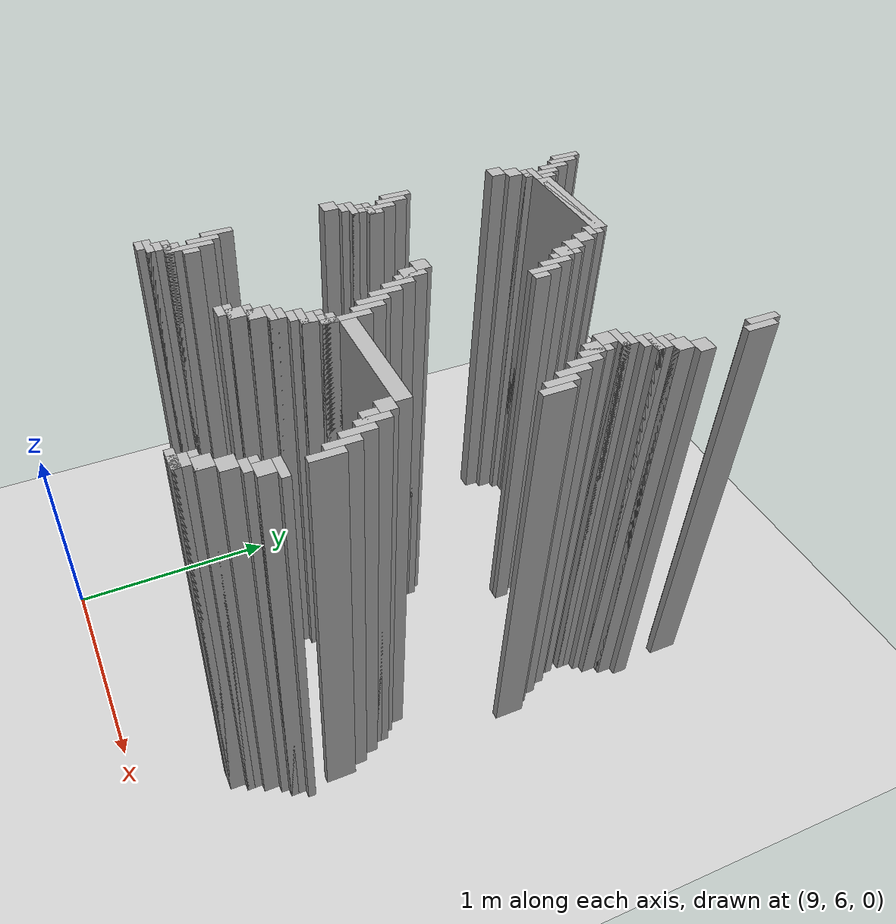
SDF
<sdf version="1.6">
 <world name="slam_world">
  <model name="ground_plane">
   <static>true</static>
   <link name="link">
    <collision name="collision">
     <geometry><plane><normal>0 0 1</normal><size>100 100</size></plane></geometry>
    </collision>
    <visual name="visual">
     <geometry><plane><normal>0 0 1</normal><size>100 100</size></plane></geometry>
     <material>
      <ambient>0.8 0.8 0.8 1</ambient>
      <diffuse>0.8 0.8 0.8 1</diffuse>
      <specular>0.8 0.8 0.8 1</specular>
     </material>
    </visual>
   </link>
  </model>
  <model name="wall_2930">
   <static>true</static>
   <pose>8.961716937354987 8.700696055684455 1.0 0 0 0</pose>
   <link name="link">
    <collision name="collision">
     <geometry><box><size>0.03480278422273782 0.13921113689095127 2.0</size></box></geometry>
    </collision>
    <visual name="visual">
     <geometry><box><size>0.03480278422273782 0.13921113689095127 2.0</size></box></geometry>
     <material><ambient>0.5 0.5 0.5 1</ambient><diffuse>0.7 0.7 0.7 1</diffuse></material>
    </visual>
   </link>
  </model>
  <model name="wall_2931">
   <static>true</static>
   <pose>10.423433874709977 8.700696055684455 1.0 0 0 0</pose>
   <link name="link">
    <collision name="collision">
     <geometry><box><size>0.03480278422273782 0.13921113689095127 2.0</size></box></geometry>
    </collision>
    <visual name="visual">
     <geometry><box><size>0.03480278422273782 0.13921113689095127 2.0</size></box></geometry>
     <material><ambient>0.5 0.5 0.5 1</ambient><diffuse>0.7 0.7 0.7 1</diffuse></material>
    </visual>
   </link>
  </model>
  <model name="wall_2945">
   <static>true</static>
   <pose>8.996519721577727 8.665893271461716 1.0 0 0 0</pose>
   <link name="link">
    <collision name="collision">
     <geometry><box><size>0.03480278422273782 0.13921113689095127 2.0</size></box></geometry>
    </collision>
    <visual name="visual">
     <geometry><box><size>0.03480278422273782 0.13921113689095127 2.0</size></box></geometry>
     <material><ambient>0.5 0.5 0.5 1</ambient><diffuse>0.7 0.7 0.7 1</diffuse></material>
    </visual>
   </link>
  </model>
  <model name="wall_2946">
   <static>true</static>
   <pose>10.458236658932714 8.665893271461716 1.0 0 0 0</pose>
   <link name="link">
    <collision name="collision">
     <geometry><box><size>0.03480278422273782 0.13921113689095127 2.0</size></box></geometry>
    </collision>
    <visual name="visual">
     <geometry><box><size>0.03480278422273782 0.13921113689095127 2.0</size></box></geometry>
     <material><ambient>0.5 0.5 0.5 1</ambient><diffuse>0.7 0.7 0.7 1</diffuse></material>
    </visual>
   </link>
  </model>
  <model name="wall_2970">
   <static>true</static>
   <pose>9.031322505800464 8.596287703016241 1.0 0 0 0</pose>
   <link name="link">
    <collision name="collision">
     <geometry><box><size>0.03480278422273782 0.13921113689095127 2.0</size></box></geometry>
    </collision>
    <visual name="visual">
     <geometry><box><size>0.03480278422273782 0.13921113689095127 2.0</size></box></geometry>
     <material><ambient>0.5 0.5 0.5 1</ambient><diffuse>0.7 0.7 0.7 1</diffuse></material>
    </visual>
   </link>
  </model>
  <model name="wall_2994">
   <static>true</static>
   <pose>9.066125290023201 8.509280742459396 1.0 0 0 0</pose>
   <link name="link">
    <collision name="collision">
     <geometry><box><size>0.03480278422273782 0.17401392111368907 2.0</size></box></geometry>
    </collision>
    <visual name="visual">
     <geometry><box><size>0.03480278422273782 0.17401392111368907 2.0</size></box></geometry>
     <material><ambient>0.5 0.5 0.5 1</ambient><diffuse>0.7 0.7 0.7 1</diffuse></material>
    </visual>
   </link>
  </model>
  <model name="wall_3009">
   <static>true</static>
   <pose>9.100928074245939 8.509280742459396 1.0 0 0 0</pose>
   <link name="link">
    <collision name="collision">
     <geometry><box><size>0.03480278422273782 0.10440835266821345 2.0</size></box></geometry>
    </collision>
    <visual name="visual">
     <geometry><box><size>0.03480278422273782 0.10440835266821345 2.0</size></box></geometry>
     <material><ambient>0.5 0.5 0.5 1</ambient><diffuse>0.7 0.7 0.7 1</diffuse></material>
    </visual>
   </link>
  </model>
  <model name="wall_3022">
   <static>true</static>
   <pose>9.361948955916473 8.491879350348027 1.0 0 0 0</pose>
   <link name="link">
    <collision name="collision">
     <geometry><box><size>0.4872389791183295 0.06960556844547564 2.0</size></box></geometry>
    </collision>
    <visual name="visual">
     <geometry><box><size>0.4872389791183295 0.06960556844547564 2.0</size></box></geometry>
     <material><ambient>0.5 0.5 0.5 1</ambient><diffuse>0.7 0.7 0.7 1</diffuse></material>
    </visual>
   </link>
  </model>
  <model name="wall_3035">
   <static>true</static>
   <pose>9.327146171693736 8.474477958236658 1.0 0 0 0</pose>
   <link name="link">
    <collision name="collision">
     <geometry><box><size>0.6264501160092807 0.03480278422273782 2.0</size></box></geometry>
    </collision>
    <visual name="visual">
     <geometry><box><size>0.6264501160092807 0.03480278422273782 2.0</size></box></geometry>
     <material><ambient>0.5 0.5 0.5 1</ambient><diffuse>0.7 0.7 0.7 1</diffuse></material>
    </visual>
   </link>
  </model>
  <model name="wall_3050">
   <static>true</static>
   <pose>9.048723897911833 8.43967517401392 1.0 0 0 0</pose>
   <link name="link">
    <collision name="collision">
     <geometry><box><size>0.06960556844547564 0.03480278422273782 2.0</size></box></geometry>
    </collision>
    <visual name="visual">
     <geometry><box><size>0.06960556844547564 0.03480278422273782 2.0</size></box></geometry>
     <material><ambient>0.5 0.5 0.5 1</ambient><diffuse>0.7 0.7 0.7 1</diffuse></material>
    </visual>
   </link>
  </model>
  <model name="wall_3051">
   <static>true</static>
   <pose>9.605568445475638 8.43967517401392 1.0 0 0 0</pose>
   <link name="link">
    <collision name="collision">
     <geometry><box><size>0.06960556844547564 0.03480278422273782 2.0</size></box></geometry>
    </collision>
    <visual name="visual">
     <geometry><box><size>0.06960556844547564 0.03480278422273782 2.0</size></box></geometry>
     <material><ambient>0.5 0.5 0.5 1</ambient><diffuse>0.7 0.7 0.7 1</diffuse></material>
    </visual>
   </link>
  </model>
  <model name="wall_3067">
   <static>true</static>
   <pose>9.013921113689095 8.387470997679815 1.0 0 0 0</pose>
   <link name="link">
    <collision name="collision">
     <geometry><box><size>0.06960556844547564 0.06960556844547564 2.0</size></box></geometry>
    </collision>
    <visual name="visual">
     <geometry><box><size>0.06960556844547564 0.06960556844547564 2.0</size></box></geometry>
     <material><ambient>0.5 0.5 0.5 1</ambient><diffuse>0.7 0.7 0.7 1</diffuse></material>
    </visual>
   </link>
  </model>
  <model name="wall_3068">
   <static>true</static>
   <pose>9.640371229698376 8.387470997679815 1.0 0 0 0</pose>
   <link name="link">
    <collision name="collision">
     <geometry><box><size>0.06960556844547564 0.06960556844547564 2.0</size></box></geometry>
    </collision>
    <visual name="visual">
     <geometry><box><size>0.06960556844547564 0.06960556844547564 2.0</size></box></geometry>
     <material><ambient>0.5 0.5 0.5 1</ambient><diffuse>0.7 0.7 0.7 1</diffuse></material>
    </visual>
   </link>
  </model>
  <model name="wall_3069">
   <static>true</static>
   <pose>10.475638051044083 8.387470997679815 1.0 0 0 0</pose>
   <link name="link">
    <collision name="collision">
     <geometry><box><size>0.06960556844547564 0.06960556844547564 2.0</size></box></geometry>
    </collision>
    <visual name="visual">
     <geometry><box><size>0.06960556844547564 0.06960556844547564 2.0</size></box></geometry>
     <material><ambient>0.5 0.5 0.5 1</ambient><diffuse>0.7 0.7 0.7 1</diffuse></material>
    </visual>
   </link>
  </model>
  <model name="wall_3084">
   <static>true</static>
   <pose>8.979118329466356 8.317865429234338 1.0 0 0 0</pose>
   <link name="link">
    <collision name="collision">
     <geometry><box><size>0.06960556844547564 0.06960556844547564 2.0</size></box></geometry>
    </collision>
    <visual name="visual">
     <geometry><box><size>0.06960556844547564 0.06960556844547564 2.0</size></box></geometry>
     <material><ambient>0.5 0.5 0.5 1</ambient><diffuse>0.7 0.7 0.7 1</diffuse></material>
    </visual>
   </link>
  </model>
  <model name="wall_3085">
   <static>true</static>
   <pose>9.675174013921113 8.317865429234338 1.0 0 0 0</pose>
   <link name="link">
    <collision name="collision">
     <geometry><box><size>0.06960556844547564 0.06960556844547564 2.0</size></box></geometry>
    </collision>
    <visual name="visual">
     <geometry><box><size>0.06960556844547564 0.06960556844547564 2.0</size></box></geometry>
     <material><ambient>0.5 0.5 0.5 1</ambient><diffuse>0.7 0.7 0.7 1</diffuse></material>
    </visual>
   </link>
  </model>
  <model name="wall_3086">
   <static>true</static>
   <pose>10.440835266821345 8.317865429234338 1.0 0 0 0</pose>
   <link name="link">
    <collision name="collision">
     <geometry><box><size>0.06960556844547564 0.06960556844547564 2.0</size></box></geometry>
    </collision>
    <visual name="visual">
     <geometry><box><size>0.06960556844547564 0.06960556844547564 2.0</size></box></geometry>
     <material><ambient>0.5 0.5 0.5 1</ambient><diffuse>0.7 0.7 0.7 1</diffuse></material>
    </visual>
   </link>
  </model>
  <model name="wall_3102">
   <static>true</static>
   <pose>9.72737819025522 8.248259860788863 1.0 0 0 0</pose>
   <link name="link">
    <collision name="collision">
     <geometry><box><size>0.03480278422273782 0.13921113689095127 2.0</size></box></geometry>
    </collision>
    <visual name="visual">
     <geometry><box><size>0.03480278422273782 0.13921113689095127 2.0</size></box></geometry>
     <material><ambient>0.5 0.5 0.5 1</ambient><diffuse>0.7 0.7 0.7 1</diffuse></material>
    </visual>
   </link>
  </model>
  <model name="wall_3103">
   <static>true</static>
   <pose>10.423433874709977 8.30046403712297 1.0 0 0 0</pose>
   <link name="link">
    <collision name="collision">
     <geometry><box><size>0.10440835266821345 0.03480278422273782 2.0</size></box></geometry>
    </collision>
    <visual name="visual">
     <geometry><box><size>0.10440835266821345 0.03480278422273782 2.0</size></box></geometry>
     <material><ambient>0.5 0.5 0.5 1</ambient><diffuse>0.7 0.7 0.7 1</diffuse></material>
    </visual>
   </link>
  </model>
  <model name="wall_3117">
   <static>true</static>
   <pose>9.70997679814385 8.248259860788863 1.0 0 0 0</pose>
   <link name="link">
    <collision name="collision">
     <geometry><box><size>0.06960556844547564 0.06960556844547564 2.0</size></box></geometry>
    </collision>
    <visual name="visual">
     <geometry><box><size>0.06960556844547564 0.06960556844547564 2.0</size></box></geometry>
     <material><ambient>0.5 0.5 0.5 1</ambient><diffuse>0.7 0.7 0.7 1</diffuse></material>
    </visual>
   </link>
  </model>
  <model name="wall_3118">
   <static>true</static>
   <pose>10.406032482598608 8.248259860788863 1.0 0 0 0</pose>
   <link name="link">
    <collision name="collision">
     <geometry><box><size>0.06960556844547564 0.06960556844547564 2.0</size></box></geometry>
    </collision>
    <visual name="visual">
     <geometry><box><size>0.06960556844547564 0.06960556844547564 2.0</size></box></geometry>
     <material><ambient>0.5 0.5 0.5 1</ambient><diffuse>0.7 0.7 0.7 1</diffuse></material>
    </visual>
   </link>
  </model>
  <model name="wall_3132">
   <static>true</static>
   <pose>9.762180974477959 8.178654292343387 1.0 0 0 0</pose>
   <link name="link">
    <collision name="collision">
     <geometry><box><size>0.03480278422273782 0.13921113689095127 2.0</size></box></geometry>
    </collision>
    <visual name="visual">
     <geometry><box><size>0.03480278422273782 0.13921113689095127 2.0</size></box></geometry>
     <material><ambient>0.5 0.5 0.5 1</ambient><diffuse>0.7 0.7 0.7 1</diffuse></material>
    </visual>
   </link>
  </model>
  <model name="wall_3133">
   <static>true</static>
   <pose>10.38863109048724 8.230858468677495 1.0 0 0 0</pose>
   <link name="link">
    <collision name="collision">
     <geometry><box><size>0.10440835266821345 0.03480278422273782 2.0</size></box></geometry>
    </collision>
    <visual name="visual">
     <geometry><box><size>0.10440835266821345 0.03480278422273782 2.0</size></box></geometry>
     <material><ambient>0.5 0.5 0.5 1</ambient><diffuse>0.7 0.7 0.7 1</diffuse></material>
    </visual>
   </link>
  </model>
  <model name="wall_3145">
   <static>true</static>
   <pose>10.37122969837587 8.196055684454755 1.0 0 0 0</pose>
   <link name="link">
    <collision name="collision">
     <geometry><box><size>0.06960556844547564 0.03480278422273782 2.0</size></box></geometry>
    </collision>
    <visual name="visual">
     <geometry><box><size>0.06960556844547564 0.03480278422273782 2.0</size></box></geometry>
     <material><ambient>0.5 0.5 0.5 1</ambient><diffuse>0.7 0.7 0.7 1</diffuse></material>
    </visual>
   </link>
  </model>
  <model name="wall_3158">
   <static>true</static>
   <pose>9.796983758700696 8.109048723897912 1.0 0 0 0</pose>
   <link name="link">
    <collision name="collision">
     <geometry><box><size>0.03480278422273782 0.13921113689095127 2.0</size></box></geometry>
    </collision>
    <visual name="visual">
     <geometry><box><size>0.03480278422273782 0.13921113689095127 2.0</size></box></geometry>
     <material><ambient>0.5 0.5 0.5 1</ambient><diffuse>0.7 0.7 0.7 1</diffuse></material>
    </visual>
   </link>
  </model>
  <model name="wall_3159">
   <static>true</static>
   <pose>10.336426914153131 8.14385150812065 1.0 0 0 0</pose>
   <link name="link">
    <collision name="collision">
     <geometry><box><size>0.06960556844547564 0.06960556844547564 2.0</size></box></geometry>
    </collision>
    <visual name="visual">
     <geometry><box><size>0.06960556844547564 0.06960556844547564 2.0</size></box></geometry>
     <material><ambient>0.5 0.5 0.5 1</ambient><diffuse>0.7 0.7 0.7 1</diffuse></material>
    </visual>
   </link>
  </model>
  <model name="wall_3172">
   <static>true</static>
   <pose>10.319025522041763 8.12645011600928 1.0 0 0 0</pose>
   <link name="link">
    <collision name="collision">
     <geometry><box><size>0.10440835266821345 0.03480278422273782 2.0</size></box></geometry>
    </collision>
    <visual name="visual">
     <geometry><box><size>0.10440835266821345 0.03480278422273782 2.0</size></box></geometry>
     <material><ambient>0.5 0.5 0.5 1</ambient><diffuse>0.7 0.7 0.7 1</diffuse></material>
    </visual>
   </link>
  </model>
  <model name="wall_3186">
   <static>true</static>
   <pose>9.831786542923433 8.074245939675174 1.0 0 0 0</pose>
   <link name="link">
    <collision name="collision">
     <geometry><box><size>0.03480278422273782 0.06960556844547564 2.0</size></box></geometry>
    </collision>
    <visual name="visual">
     <geometry><box><size>0.03480278422273782 0.06960556844547564 2.0</size></box></geometry>
     <material><ambient>0.5 0.5 0.5 1</ambient><diffuse>0.7 0.7 0.7 1</diffuse></material>
    </visual>
   </link>
  </model>
  <model name="wall_3187">
   <static>true</static>
   <pose>10.301624129930394 8.074245939675174 1.0 0 0 0</pose>
   <link name="link">
    <collision name="collision">
     <geometry><box><size>0.06960556844547564 0.06960556844547564 2.0</size></box></geometry>
    </collision>
    <visual name="visual">
     <geometry><box><size>0.06960556844547564 0.06960556844547564 2.0</size></box></geometry>
     <material><ambient>0.5 0.5 0.5 1</ambient><diffuse>0.7 0.7 0.7 1</diffuse></material>
    </visual>
   </link>
  </model>
  <model name="wall_3200">
   <static>true</static>
   <pose>10.3538283062645 8.004640371229698 1.0 0 0 0</pose>
   <link name="link">
    <collision name="collision">
     <geometry><box><size>0.03480278422273782 0.13921113689095127 2.0</size></box></geometry>
    </collision>
    <visual name="visual">
     <geometry><box><size>0.03480278422273782 0.13921113689095127 2.0</size></box></geometry>
     <material><ambient>0.5 0.5 0.5 1</ambient><diffuse>0.7 0.7 0.7 1</diffuse></material>
    </visual>
   </link>
  </model>
  <model name="wall_3213">
   <static>true</static>
   <pose>10.336426914153131 8.004640371229698 1.0 0 0 0</pose>
   <link name="link">
    <collision name="collision">
     <geometry><box><size>0.06960556844547564 0.06960556844547564 2.0</size></box></geometry>
    </collision>
    <visual name="visual">
     <geometry><box><size>0.06960556844547564 0.06960556844547564 2.0</size></box></geometry>
     <material><ambient>0.5 0.5 0.5 1</ambient><diffuse>0.7 0.7 0.7 1</diffuse></material>
    </visual>
   </link>
  </model>
  <model name="wall_3226">
   <static>true</static>
   <pose>10.38863109048724 7.935034802784222 1.0 0 0 0</pose>
   <link name="link">
    <collision name="collision">
     <geometry><box><size>0.03480278422273782 0.13921113689095127 2.0</size></box></geometry>
    </collision>
    <visual name="visual">
     <geometry><box><size>0.03480278422273782 0.13921113689095127 2.0</size></box></geometry>
     <material><ambient>0.5 0.5 0.5 1</ambient><diffuse>0.7 0.7 0.7 1</diffuse></material>
    </visual>
   </link>
  </model>
  <model name="wall_3244">
   <static>true</static>
   <pose>10.423433874709977 7.865429234338746 1.0 0 0 0</pose>
   <link name="link">
    <collision name="collision">
     <geometry><box><size>0.03480278422273782 0.13921113689095127 2.0</size></box></geometry>
    </collision>
    <visual name="visual">
     <geometry><box><size>0.03480278422273782 0.13921113689095127 2.0</size></box></geometry>
     <material><ambient>0.5 0.5 0.5 1</ambient><diffuse>0.7 0.7 0.7 1</diffuse></material>
    </visual>
   </link>
  </model>
  <model name="wall_3256">
   <static>true</static>
   <pose>8.996519721577727 7.795823665893272 1.0 0 0 0</pose>
   <link name="link">
    <collision name="collision">
     <geometry><box><size>0.03480278422273782 0.13921113689095127 2.0</size></box></geometry>
    </collision>
    <visual name="visual">
     <geometry><box><size>0.03480278422273782 0.13921113689095127 2.0</size></box></geometry>
     <material><ambient>0.5 0.5 0.5 1</ambient><diffuse>0.7 0.7 0.7 1</diffuse></material>
    </visual>
   </link>
  </model>
  <model name="wall_3257">
   <static>true</static>
   <pose>10.458236658932714 7.795823665893272 1.0 0 0 0</pose>
   <link name="link">
    <collision name="collision">
     <geometry><box><size>0.03480278422273782 0.13921113689095127 2.0</size></box></geometry>
    </collision>
    <visual name="visual">
     <geometry><box><size>0.03480278422273782 0.13921113689095127 2.0</size></box></geometry>
     <material><ambient>0.5 0.5 0.5 1</ambient><diffuse>0.7 0.7 0.7 1</diffuse></material>
    </visual>
   </link>
  </model>
  <model name="wall_3269">
   <static>true</static>
   <pose>9.031322505800464 7.761020881670533 1.0 0 0 0</pose>
   <link name="link">
    <collision name="collision">
     <geometry><box><size>0.03480278422273782 0.13921113689095127 2.0</size></box></geometry>
    </collision>
    <visual name="visual">
     <geometry><box><size>0.03480278422273782 0.13921113689095127 2.0</size></box></geometry>
     <material><ambient>0.5 0.5 0.5 1</ambient><diffuse>0.7 0.7 0.7 1</diffuse></material>
    </visual>
   </link>
  </model>
  <model name="wall_3270">
   <static>true</static>
   <pose>10.493039443155451 7.761020881670533 1.0 0 0 0</pose>
   <link name="link">
    <collision name="collision">
     <geometry><box><size>0.03480278422273782 0.13921113689095127 2.0</size></box></geometry>
    </collision>
    <visual name="visual">
     <geometry><box><size>0.03480278422273782 0.13921113689095127 2.0</size></box></geometry>
     <material><ambient>0.5 0.5 0.5 1</ambient><diffuse>0.7 0.7 0.7 1</diffuse></material>
    </visual>
   </link>
  </model>
  <model name="wall_3287">
   <static>true</static>
   <pose>9.066125290023201 7.65661252900232 1.0 0 0 0</pose>
   <link name="link">
    <collision name="collision">
     <geometry><box><size>0.03480278422273782 0.2088167053364269 2.0</size></box></geometry>
    </collision>
    <visual name="visual">
     <geometry><box><size>0.03480278422273782 0.2088167053364269 2.0</size></box></geometry>
     <material><ambient>0.5 0.5 0.5 1</ambient><diffuse>0.7 0.7 0.7 1</diffuse></material>
    </visual>
   </link>
  </model>
  <model name="wall_3305">
   <static>true</static>
   <pose>9.100928074245939 7.65661252900232 1.0 0 0 0</pose>
   <link name="link">
    <collision name="collision">
     <geometry><box><size>0.03480278422273782 0.06960556844547564 2.0</size></box></geometry>
    </collision>
    <visual name="visual">
     <geometry><box><size>0.03480278422273782 0.06960556844547564 2.0</size></box></geometry>
     <material><ambient>0.5 0.5 0.5 1</ambient><diffuse>0.7 0.7 0.7 1</diffuse></material>
    </visual>
   </link>
  </model>
  <model name="wall_3306">
   <static>true</static>
   <pose>9.5707656612529 7.65661252900232 1.0 0 0 0</pose>
   <link name="link">
    <collision name="collision">
     <geometry><box><size>0.06960556844547564 0.06960556844547564 2.0</size></box></geometry>
    </collision>
    <visual name="visual">
     <geometry><box><size>0.06960556844547564 0.06960556844547564 2.0</size></box></geometry>
     <material><ambient>0.5 0.5 0.5 1</ambient><diffuse>0.7 0.7 0.7 1</diffuse></material>
    </visual>
   </link>
  </model>
  <model name="wall_3318">
   <static>true</static>
   <pose>9.066125290023201 7.6392111368909505 1.0 0 0 0</pose>
   <link name="link">
    <collision name="collision">
     <geometry><box><size>0.10440835266821345 0.03480278422273782 2.0</size></box></geometry>
    </collision>
    <visual name="visual">
     <geometry><box><size>0.10440835266821345 0.03480278422273782 2.0</size></box></geometry>
     <material><ambient>0.5 0.5 0.5 1</ambient><diffuse>0.7 0.7 0.7 1</diffuse></material>
    </visual>
   </link>
  </model>
  <model name="wall_3319">
   <static>true</static>
   <pose>9.622969837587007 7.587006960556844 1.0 0 0 0</pose>
   <link name="link">
    <collision name="collision">
     <geometry><box><size>0.03480278422273782 0.13921113689095127 2.0</size></box></geometry>
    </collision>
    <visual name="visual">
     <geometry><box><size>0.03480278422273782 0.13921113689095127 2.0</size></box></geometry>
     <material><ambient>0.5 0.5 0.5 1</ambient><diffuse>0.7 0.7 0.7 1</diffuse></material>
    </visual>
   </link>
  </model>
  <model name="wall_3333">
   <static>true</static>
   <pose>9.048723897911833 7.587006960556844 1.0 0 0 0</pose>
   <link name="link">
    <collision name="collision">
     <geometry><box><size>0.06960556844547564 0.06960556844547564 2.0</size></box></geometry>
    </collision>
    <visual name="visual">
     <geometry><box><size>0.06960556844547564 0.06960556844547564 2.0</size></box></geometry>
     <material><ambient>0.5 0.5 0.5 1</ambient><diffuse>0.7 0.7 0.7 1</diffuse></material>
    </visual>
   </link>
  </model>
  <model name="wall_3334">
   <static>true</static>
   <pose>9.605568445475638 7.587006960556844 1.0 0 0 0</pose>
   <link name="link">
    <collision name="collision">
     <geometry><box><size>0.06960556844547564 0.06960556844547564 2.0</size></box></geometry>
    </collision>
    <visual name="visual">
     <geometry><box><size>0.06960556844547564 0.06960556844547564 2.0</size></box></geometry>
     <material><ambient>0.5 0.5 0.5 1</ambient><diffuse>0.7 0.7 0.7 1</diffuse></material>
    </visual>
   </link>
  </model>
  <model name="wall_3348">
   <static>true</static>
   <pose>9.031322505800464 7.569605568445476 1.0 0 0 0</pose>
   <link name="link">
    <collision name="collision">
     <geometry><box><size>0.10440835266821345 0.03480278422273782 2.0</size></box></geometry>
    </collision>
    <visual name="visual">
     <geometry><box><size>0.10440835266821345 0.03480278422273782 2.0</size></box></geometry>
     <material><ambient>0.5 0.5 0.5 1</ambient><diffuse>0.7 0.7 0.7 1</diffuse></material>
    </visual>
   </link>
  </model>
  <model name="wall_3349">
   <static>true</static>
   <pose>9.657772621809745 7.517401392111369 1.0 0 0 0</pose>
   <link name="link">
    <collision name="collision">
     <geometry><box><size>0.03480278422273782 0.13921113689095127 2.0</size></box></geometry>
    </collision>
    <visual name="visual">
     <geometry><box><size>0.03480278422273782 0.13921113689095127 2.0</size></box></geometry>
     <material><ambient>0.5 0.5 0.5 1</ambient><diffuse>0.7 0.7 0.7 1</diffuse></material>
    </visual>
   </link>
  </model>
  <model name="wall_3361">
   <static>true</static>
   <pose>9.013921113689095 7.534802784222737 1.0 0 0 0</pose>
   <link name="link">
    <collision name="collision">
     <geometry><box><size>0.06960556844547564 0.03480278422273782 2.0</size></box></geometry>
    </collision>
    <visual name="visual">
     <geometry><box><size>0.06960556844547564 0.03480278422273782 2.0</size></box></geometry>
     <material><ambient>0.5 0.5 0.5 1</ambient><diffuse>0.7 0.7 0.7 1</diffuse></material>
    </visual>
   </link>
  </model>
  <model name="wall_3373">
   <static>true</static>
   <pose>8.979118329466356 7.48259860788863 1.0 0 0 0</pose>
   <link name="link">
    <collision name="collision">
     <geometry><box><size>0.06960556844547564 0.06960556844547564 2.0</size></box></geometry>
    </collision>
    <visual name="visual">
     <geometry><box><size>0.06960556844547564 0.06960556844547564 2.0</size></box></geometry>
     <material><ambient>0.5 0.5 0.5 1</ambient><diffuse>0.7 0.7 0.7 1</diffuse></material>
    </visual>
   </link>
  </model>
  <model name="wall_3374">
   <static>true</static>
   <pose>9.692575406032482 7.447795823665893 1.0 0 0 0</pose>
   <link name="link">
    <collision name="collision">
     <geometry><box><size>0.03480278422273782 0.13921113689095127 2.0</size></box></geometry>
    </collision>
    <visual name="visual">
     <geometry><box><size>0.03480278422273782 0.13921113689095127 2.0</size></box></geometry>
     <material><ambient>0.5 0.5 0.5 1</ambient><diffuse>0.7 0.7 0.7 1</diffuse></material>
    </visual>
   </link>
  </model>
  <model name="wall_3389">
   <static>true</static>
   <pose>9.72737819025522 7.378190255220417 1.0 0 0 0</pose>
   <link name="link">
    <collision name="collision">
     <geometry><box><size>0.03480278422273782 0.13921113689095127 2.0</size></box></geometry>
    </collision>
    <visual name="visual">
     <geometry><box><size>0.03480278422273782 0.13921113689095127 2.0</size></box></geometry>
     <material><ambient>0.5 0.5 0.5 1</ambient><diffuse>0.7 0.7 0.7 1</diffuse></material>
    </visual>
   </link>
  </model>
  <model name="wall_3404">
   <static>true</static>
   <pose>9.762180974477959 7.34338747099768 1.0 0 0 0</pose>
   <link name="link">
    <collision name="collision">
     <geometry><box><size>0.03480278422273782 0.13921113689095127 2.0</size></box></geometry>
    </collision>
    <visual name="visual">
     <geometry><box><size>0.03480278422273782 0.13921113689095127 2.0</size></box></geometry>
     <material><ambient>0.5 0.5 0.5 1</ambient><diffuse>0.7 0.7 0.7 1</diffuse></material>
    </visual>
   </link>
  </model>
  <model name="wall_3426">
   <static>true</static>
   <pose>9.796983758700696 7.238979118329466 1.0 0 0 0</pose>
   <link name="link">
    <collision name="collision">
     <geometry><box><size>0.03480278422273782 0.2088167053364269 2.0</size></box></geometry>
    </collision>
    <visual name="visual">
     <geometry><box><size>0.03480278422273782 0.2088167053364269 2.0</size></box></geometry>
     <material><ambient>0.5 0.5 0.5 1</ambient><diffuse>0.7 0.7 0.7 1</diffuse></material>
    </visual>
   </link>
  </model>
  <model name="wall_3446">
   <static>true</static>
   <pose>10.075406032482599 7.238979118329466 1.0 0 0 0</pose>
   <link name="link">
    <collision name="collision">
     <geometry><box><size>0.5220417633410672 0.06960556844547564 2.0</size></box></geometry>
    </collision>
    <visual name="visual">
     <geometry><box><size>0.5220417633410672 0.06960556844547564 2.0</size></box></geometry>
     <material><ambient>0.5 0.5 0.5 1</ambient><diffuse>0.7 0.7 0.7 1</diffuse></material>
    </visual>
   </link>
  </model>
  <model name="wall_3457">
   <static>true</static>
   <pose>9.779582366589327 7.16937354988399 1.0 0 0 0</pose>
   <link name="link">
    <collision name="collision">
     <geometry><box><size>0.06960556844547564 0.06960556844547564 2.0</size></box></geometry>
    </collision>
    <visual name="visual">
     <geometry><box><size>0.06960556844547564 0.06960556844547564 2.0</size></box></geometry>
     <material><ambient>0.5 0.5 0.5 1</ambient><diffuse>0.7 0.7 0.7 1</diffuse></material>
    </visual>
   </link>
  </model>
  <model name="wall_3458">
   <static>true</static>
   <pose>10.336426914153131 7.16937354988399 1.0 0 0 0</pose>
   <link name="link">
    <collision name="collision">
     <geometry><box><size>0.06960556844547564 0.06960556844547564 2.0</size></box></geometry>
    </collision>
    <visual name="visual">
     <geometry><box><size>0.06960556844547564 0.06960556844547564 2.0</size></box></geometry>
     <material><ambient>0.5 0.5 0.5 1</ambient><diffuse>0.7 0.7 0.7 1</diffuse></material>
    </visual>
   </link>
  </model>
  <model name="wall_3470">
   <static>true</static>
   <pose>9.762180974477959 7.151972157772621 1.0 0 0 0</pose>
   <link name="link">
    <collision name="collision">
     <geometry><box><size>0.10440835266821345 0.03480278422273782 2.0</size></box></geometry>
    </collision>
    <visual name="visual">
     <geometry><box><size>0.10440835266821345 0.03480278422273782 2.0</size></box></geometry>
     <material><ambient>0.5 0.5 0.5 1</ambient><diffuse>0.7 0.7 0.7 1</diffuse></material>
    </visual>
   </link>
  </model>
  <model name="wall_3471">
   <static>true</static>
   <pose>10.38863109048724 7.099767981438514 1.0 0 0 0</pose>
   <link name="link">
    <collision name="collision">
     <geometry><box><size>0.03480278422273782 0.13921113689095127 2.0</size></box></geometry>
    </collision>
    <visual name="visual">
     <geometry><box><size>0.03480278422273782 0.13921113689095127 2.0</size></box></geometry>
     <material><ambient>0.5 0.5 0.5 1</ambient><diffuse>0.7 0.7 0.7 1</diffuse></material>
    </visual>
   </link>
  </model>
  <model name="wall_3483">
   <static>true</static>
   <pose>9.744779582366588 7.099767981438514 1.0 0 0 0</pose>
   <link name="link">
    <collision name="collision">
     <geometry><box><size>0.06960556844547564 0.06960556844547564 2.0</size></box></geometry>
    </collision>
    <visual name="visual">
     <geometry><box><size>0.06960556844547564 0.06960556844547564 2.0</size></box></geometry>
     <material><ambient>0.5 0.5 0.5 1</ambient><diffuse>0.7 0.7 0.7 1</diffuse></material>
    </visual>
   </link>
  </model>
  <model name="wall_3484">
   <static>true</static>
   <pose>10.37122969837587 7.099767981438514 1.0 0 0 0</pose>
   <link name="link">
    <collision name="collision">
     <geometry><box><size>0.06960556844547564 0.06960556844547564 2.0</size></box></geometry>
    </collision>
    <visual name="visual">
     <geometry><box><size>0.06960556844547564 0.06960556844547564 2.0</size></box></geometry>
     <material><ambient>0.5 0.5 0.5 1</ambient><diffuse>0.7 0.7 0.7 1</diffuse></material>
    </visual>
   </link>
  </model>
  <model name="wall_3496">
   <static>true</static>
   <pose>9.72737819025522 7.082366589327146 1.0 0 0 0</pose>
   <link name="link">
    <collision name="collision">
     <geometry><box><size>0.10440835266821345 0.03480278422273782 2.0</size></box></geometry>
    </collision>
    <visual name="visual">
     <geometry><box><size>0.10440835266821345 0.03480278422273782 2.0</size></box></geometry>
     <material><ambient>0.5 0.5 0.5 1</ambient><diffuse>0.7 0.7 0.7 1</diffuse></material>
    </visual>
   </link>
  </model>
  <model name="wall_3497">
   <static>true</static>
   <pose>10.423433874709977 7.03016241299304 1.0 0 0 0</pose>
   <link name="link">
    <collision name="collision">
     <geometry><box><size>0.03480278422273782 0.13921113689095127 2.0</size></box></geometry>
    </collision>
    <visual name="visual">
     <geometry><box><size>0.03480278422273782 0.13921113689095127 2.0</size></box></geometry>
     <material><ambient>0.5 0.5 0.5 1</ambient><diffuse>0.7 0.7 0.7 1</diffuse></material>
    </visual>
   </link>
  </model>
  <model name="wall_3504">
   <static>true</static>
   <pose>9.70997679814385 7.047563805104408 1.0 0 0 0</pose>
   <link name="link">
    <collision name="collision">
     <geometry><box><size>0.06960556844547564 0.03480278422273782 2.0</size></box></geometry>
    </collision>
    <visual name="visual">
     <geometry><box><size>0.06960556844547564 0.03480278422273782 2.0</size></box></geometry>
     <material><ambient>0.5 0.5 0.5 1</ambient><diffuse>0.7 0.7 0.7 1</diffuse></material>
    </visual>
   </link>
  </model>
  <model name="wall_3512">
   <static>true</static>
   <pose>8.996519721577727 6.960556844547564 1.0 0 0 0</pose>
   <link name="link">
    <collision name="collision">
     <geometry><box><size>0.03480278422273782 0.13921113689095127 2.0</size></box></geometry>
    </collision>
    <visual name="visual">
     <geometry><box><size>0.03480278422273782 0.13921113689095127 2.0</size></box></geometry>
     <material><ambient>0.5 0.5 0.5 1</ambient><diffuse>0.7 0.7 0.7 1</diffuse></material>
    </visual>
   </link>
  </model>
  <model name="wall_3513">
   <static>true</static>
   <pose>9.675174013921113 6.995359628770301 1.0 0 0 0</pose>
   <link name="link">
    <collision name="collision">
     <geometry><box><size>0.06960556844547564 0.06960556844547564 2.0</size></box></geometry>
    </collision>
    <visual name="visual">
     <geometry><box><size>0.06960556844547564 0.06960556844547564 2.0</size></box></geometry>
     <material><ambient>0.5 0.5 0.5 1</ambient><diffuse>0.7 0.7 0.7 1</diffuse></material>
    </visual>
   </link>
  </model>
  <model name="wall_3514">
   <static>true</static>
   <pose>10.458236658932714 6.960556844547564 1.0 0 0 0</pose>
   <link name="link">
    <collision name="collision">
     <geometry><box><size>0.03480278422273782 0.13921113689095127 2.0</size></box></geometry>
    </collision>
    <visual name="visual">
     <geometry><box><size>0.03480278422273782 0.13921113689095127 2.0</size></box></geometry>
     <material><ambient>0.5 0.5 0.5 1</ambient><diffuse>0.7 0.7 0.7 1</diffuse></material>
    </visual>
   </link>
  </model>
  <model name="wall_3521">
   <static>true</static>
   <pose>9.657772621809745 6.977958236658933 1.0 0 0 0</pose>
   <link name="link">
    <collision name="collision">
     <geometry><box><size>0.10440835266821345 0.03480278422273782 2.0</size></box></geometry>
    </collision>
    <visual name="visual">
     <geometry><box><size>0.10440835266821345 0.03480278422273782 2.0</size></box></geometry>
     <material><ambient>0.5 0.5 0.5 1</ambient><diffuse>0.7 0.7 0.7 1</diffuse></material>
    </visual>
   </link>
  </model>
  <model name="wall_3529">
   <static>true</static>
   <pose>9.031322505800464 6.890951276102088 1.0 0 0 0</pose>
   <link name="link">
    <collision name="collision">
     <geometry><box><size>0.03480278422273782 0.13921113689095127 2.0</size></box></geometry>
    </collision>
    <visual name="visual">
     <geometry><box><size>0.03480278422273782 0.13921113689095127 2.0</size></box></geometry>
     <material><ambient>0.5 0.5 0.5 1</ambient><diffuse>0.7 0.7 0.7 1</diffuse></material>
    </visual>
   </link>
  </model>
  <model name="wall_3530">
   <static>true</static>
   <pose>9.640371229698376 6.9257540603248255 1.0 0 0 0</pose>
   <link name="link">
    <collision name="collision">
     <geometry><box><size>0.06960556844547564 0.06960556844547564 2.0</size></box></geometry>
    </collision>
    <visual name="visual">
     <geometry><box><size>0.06960556844547564 0.06960556844547564 2.0</size></box></geometry>
     <material><ambient>0.5 0.5 0.5 1</ambient><diffuse>0.7 0.7 0.7 1</diffuse></material>
    </visual>
   </link>
  </model>
  <model name="wall_3531">
   <static>true</static>
   <pose>10.493039443155451 6.890951276102088 1.0 0 0 0</pose>
   <link name="link">
    <collision name="collision">
     <geometry><box><size>0.03480278422273782 0.13921113689095127 2.0</size></box></geometry>
    </collision>
    <visual name="visual">
     <geometry><box><size>0.03480278422273782 0.13921113689095127 2.0</size></box></geometry>
     <material><ambient>0.5 0.5 0.5 1</ambient><diffuse>0.7 0.7 0.7 1</diffuse></material>
    </visual>
   </link>
  </model>
  <model name="wall_3542">
   <static>true</static>
   <pose>9.066125290023201 6.821345707656612 1.0 0 0 0</pose>
   <link name="link">
    <collision name="collision">
     <geometry><box><size>0.03480278422273782 0.2088167053364269 2.0</size></box></geometry>
    </collision>
    <visual name="visual">
     <geometry><box><size>0.03480278422273782 0.2088167053364269 2.0</size></box></geometry>
     <material><ambient>0.5 0.5 0.5 1</ambient><diffuse>0.7 0.7 0.7 1</diffuse></material>
    </visual>
   </link>
  </model>
  <model name="wall_3543">
   <static>true</static>
   <pose>9.622969837587007 6.908352668213457 1.0 0 0 0</pose>
   <link name="link">
    <collision name="collision">
     <geometry><box><size>0.10440835266821345 0.03480278422273782 2.0</size></box></geometry>
    </collision>
    <visual name="visual">
     <geometry><box><size>0.10440835266821345 0.03480278422273782 2.0</size></box></geometry>
     <material><ambient>0.5 0.5 0.5 1</ambient><diffuse>0.7 0.7 0.7 1</diffuse></material>
    </visual>
   </link>
  </model>
  <model name="wall_3551">
   <static>true</static>
   <pose>9.605568445475638 6.85614849187935 1.0 0 0 0</pose>
   <link name="link">
    <collision name="collision">
     <geometry><box><size>0.06960556844547564 0.06960556844547564 2.0</size></box></geometry>
    </collision>
    <visual name="visual">
     <geometry><box><size>0.06960556844547564 0.06960556844547564 2.0</size></box></geometry>
     <material><ambient>0.5 0.5 0.5 1</ambient><diffuse>0.7 0.7 0.7 1</diffuse></material>
    </visual>
   </link>
  </model>
  <model name="wall_3562">
   <static>true</static>
   <pose>9.100928074245939 6.821345707656612 1.0 0 0 0</pose>
   <link name="link">
    <collision name="collision">
     <geometry><box><size>0.03480278422273782 0.06960556844547564 2.0</size></box></geometry>
    </collision>
    <visual name="visual">
     <geometry><box><size>0.03480278422273782 0.06960556844547564 2.0</size></box></geometry>
     <material><ambient>0.5 0.5 0.5 1</ambient><diffuse>0.7 0.7 0.7 1</diffuse></material>
    </visual>
   </link>
  </model>
  <model name="wall_3563">
   <static>true</static>
   <pose>9.588167053364268 6.838747099767981 1.0 0 0 0</pose>
   <link name="link">
    <collision name="collision">
     <geometry><box><size>0.10440835266821345 0.03480278422273782 2.0</size></box></geometry>
    </collision>
    <visual name="visual">
     <geometry><box><size>0.10440835266821345 0.03480278422273782 2.0</size></box></geometry>
     <material><ambient>0.5 0.5 0.5 1</ambient><diffuse>0.7 0.7 0.7 1</diffuse></material>
    </visual>
   </link>
  </model>
  <model name="wall_3570">
   <static>true</static>
   <pose>9.5707656612529 6.803944315545244 1.0 0 0 0</pose>
   <link name="link">
    <collision name="collision">
     <geometry><box><size>0.06960556844547564 0.03480278422273782 2.0</size></box></geometry>
    </collision>
    <visual name="visual">
     <geometry><box><size>0.06960556844547564 0.03480278422273782 2.0</size></box></geometry>
     <material><ambient>0.5 0.5 0.5 1</ambient><diffuse>0.7 0.7 0.7 1</diffuse></material>
    </visual>
   </link>
  </model>
  <model name="wall_3581">
   <static>true</static>
   <pose>9.048723897911833 6.751740139211137 1.0 0 0 0</pose>
   <link name="link">
    <collision name="collision">
     <geometry><box><size>0.06960556844547564 0.06960556844547564 2.0</size></box></geometry>
    </collision>
    <visual name="visual">
     <geometry><box><size>0.06960556844547564 0.06960556844547564 2.0</size></box></geometry>
     <material><ambient>0.5 0.5 0.5 1</ambient><diffuse>0.7 0.7 0.7 1</diffuse></material>
    </visual>
   </link>
  </model>
  <model name="wall_3595">
   <static>true</static>
   <pose>9.031322505800464 6.734338747099768 1.0 0 0 0</pose>
   <link name="link">
    <collision name="collision">
     <geometry><box><size>0.10440835266821345 0.03480278422273782 2.0</size></box></geometry>
    </collision>
    <visual name="visual">
     <geometry><box><size>0.10440835266821345 0.03480278422273782 2.0</size></box></geometry>
     <material><ambient>0.5 0.5 0.5 1</ambient><diffuse>0.7 0.7 0.7 1</diffuse></material>
    </visual>
   </link>
  </model>
  <model name="wall_3596">
   <static>true</static>
   <pose>10.493039443155451 6.734338747099768 1.0 0 0 0</pose>
   <link name="link">
    <collision name="collision">
     <geometry><box><size>0.10440835266821345 0.03480278422273782 2.0</size></box></geometry>
    </collision>
    <visual name="visual">
     <geometry><box><size>0.10440835266821345 0.03480278422273782 2.0</size></box></geometry>
     <material><ambient>0.5 0.5 0.5 1</ambient><diffuse>0.7 0.7 0.7 1</diffuse></material>
    </visual>
   </link>
  </model>
  <model name="wall_3609">
   <static>true</static>
   <pose>9.013921113689095 6.682134570765661 1.0 0 0 0</pose>
   <link name="link">
    <collision name="collision">
     <geometry><box><size>0.06960556844547564 0.06960556844547564 2.0</size></box></geometry>
    </collision>
    <visual name="visual">
     <geometry><box><size>0.06960556844547564 0.06960556844547564 2.0</size></box></geometry>
     <material><ambient>0.5 0.5 0.5 1</ambient><diffuse>0.7 0.7 0.7 1</diffuse></material>
    </visual>
   </link>
  </model>
  <model name="wall_3610">
   <static>true</static>
   <pose>10.475638051044083 6.682134570765661 1.0 0 0 0</pose>
   <link name="link">
    <collision name="collision">
     <geometry><box><size>0.06960556844547564 0.06960556844547564 2.0</size></box></geometry>
    </collision>
    <visual name="visual">
     <geometry><box><size>0.06960556844547564 0.06960556844547564 2.0</size></box></geometry>
     <material><ambient>0.5 0.5 0.5 1</ambient><diffuse>0.7 0.7 0.7 1</diffuse></material>
    </visual>
   </link>
  </model>
  <model name="wall_3623">
   <static>true</static>
   <pose>8.996519721577727 6.664733178654292 1.0 0 0 0</pose>
   <link name="link">
    <collision name="collision">
     <geometry><box><size>0.10440835266821345 0.03480278422273782 2.0</size></box></geometry>
    </collision>
    <visual name="visual">
     <geometry><box><size>0.10440835266821345 0.03480278422273782 2.0</size></box></geometry>
     <material><ambient>0.5 0.5 0.5 1</ambient><diffuse>0.7 0.7 0.7 1</diffuse></material>
    </visual>
   </link>
  </model>
  <model name="wall_3624">
   <static>true</static>
   <pose>10.458236658932714 6.664733178654292 1.0 0 0 0</pose>
   <link name="link">
    <collision name="collision">
     <geometry><box><size>0.10440835266821345 0.03480278422273782 2.0</size></box></geometry>
    </collision>
    <visual name="visual">
     <geometry><box><size>0.10440835266821345 0.03480278422273782 2.0</size></box></geometry>
     <material><ambient>0.5 0.5 0.5 1</ambient><diffuse>0.7 0.7 0.7 1</diffuse></material>
    </visual>
   </link>
  </model>
  <model name="wall_3632">
   <static>true</static>
   <pose>8.979118329466356 6.629930394431554 1.0 0 0 0</pose>
   <link name="link">
    <collision name="collision">
     <geometry><box><size>0.06960556844547564 0.03480278422273782 2.0</size></box></geometry>
    </collision>
    <visual name="visual">
     <geometry><box><size>0.06960556844547564 0.03480278422273782 2.0</size></box></geometry>
     <material><ambient>0.5 0.5 0.5 1</ambient><diffuse>0.7 0.7 0.7 1</diffuse></material>
    </visual>
   </link>
  </model>
  <model name="wall_3633">
   <static>true</static>
   <pose>10.440835266821345 6.629930394431554 1.0 0 0 0</pose>
   <link name="link">
    <collision name="collision">
     <geometry><box><size>0.06960556844547564 0.03480278422273782 2.0</size></box></geometry>
    </collision>
    <visual name="visual">
     <geometry><box><size>0.06960556844547564 0.03480278422273782 2.0</size></box></geometry>
     <material><ambient>0.5 0.5 0.5 1</ambient><diffuse>0.7 0.7 0.7 1</diffuse></material>
    </visual>
   </link>
  </model>
  <model name="wall_3646">
   <static>true</static>
   <pose>10.406032482598608 6.577726218097448 1.0 0 0 0</pose>
   <link name="link">
    <collision name="collision">
     <geometry><box><size>0.06960556844547564 0.06960556844547564 2.0</size></box></geometry>
    </collision>
    <visual name="visual">
     <geometry><box><size>0.06960556844547564 0.06960556844547564 2.0</size></box></geometry>
     <material><ambient>0.5 0.5 0.5 1</ambient><diffuse>0.7 0.7 0.7 1</diffuse></material>
    </visual>
   </link>
  </model>
  <model name="wall_3660">
   <static>true</static>
   <pose>10.37122969837587 6.508120649651972 1.0 0 0 0</pose>
   <link name="link">
    <collision name="collision">
     <geometry><box><size>0.06960556844547564 0.06960556844547564 2.0</size></box></geometry>
    </collision>
    <visual name="visual">
     <geometry><box><size>0.06960556844547564 0.06960556844547564 2.0</size></box></geometry>
     <material><ambient>0.5 0.5 0.5 1</ambient><diffuse>0.7 0.7 0.7 1</diffuse></material>
    </visual>
   </link>
  </model>
  <model name="wall_3674">
   <static>true</static>
   <pose>10.3538283062645 6.490719257540603 1.0 0 0 0</pose>
   <link name="link">
    <collision name="collision">
     <geometry><box><size>0.10440835266821345 0.03480278422273782 2.0</size></box></geometry>
    </collision>
    <visual name="visual">
     <geometry><box><size>0.10440835266821345 0.03480278422273782 2.0</size></box></geometry>
     <material><ambient>0.5 0.5 0.5 1</ambient><diffuse>0.7 0.7 0.7 1</diffuse></material>
    </visual>
   </link>
  </model>
  <model name="wall_3683">
   <static>true</static>
   <pose>10.336426914153131 6.438515081206496 1.0 0 0 0</pose>
   <link name="link">
    <collision name="collision">
     <geometry><box><size>0.06960556844547564 0.06960556844547564 2.0</size></box></geometry>
    </collision>
    <visual name="visual">
     <geometry><box><size>0.06960556844547564 0.06960556844547564 2.0</size></box></geometry>
     <material><ambient>0.5 0.5 0.5 1</ambient><diffuse>0.7 0.7 0.7 1</diffuse></material>
    </visual>
   </link>
  </model>
  <model name="wall_3696">
   <static>true</static>
   <pose>10.319025522041763 6.421113689095128 1.0 0 0 0</pose>
   <link name="link">
    <collision name="collision">
     <geometry><box><size>0.10440835266821345 0.03480278422273782 2.0</size></box></geometry>
    </collision>
    <visual name="visual">
     <geometry><box><size>0.10440835266821345 0.03480278422273782 2.0</size></box></geometry>
     <material><ambient>0.5 0.5 0.5 1</ambient><diffuse>0.7 0.7 0.7 1</diffuse></material>
    </visual>
   </link>
  </model>
 </world>
</sdf>
